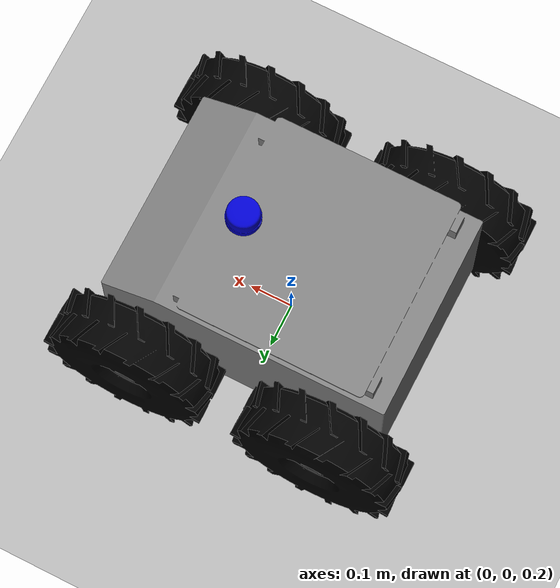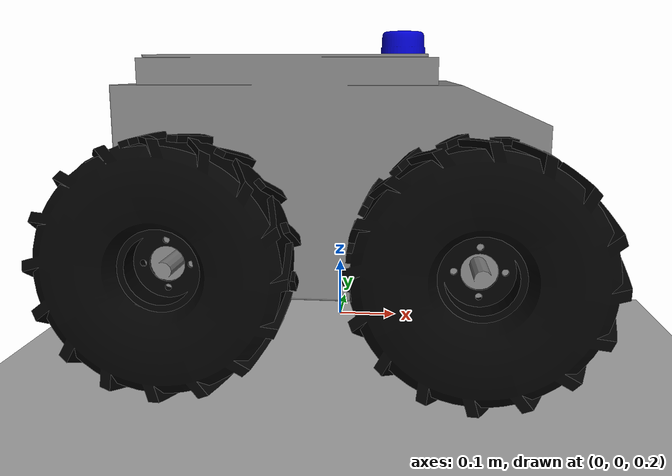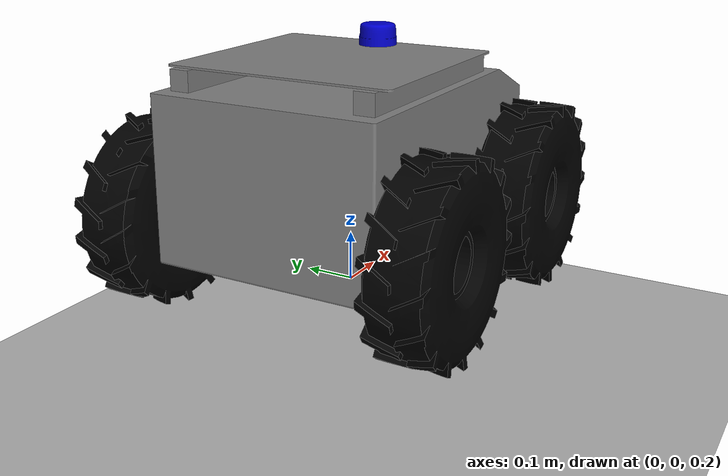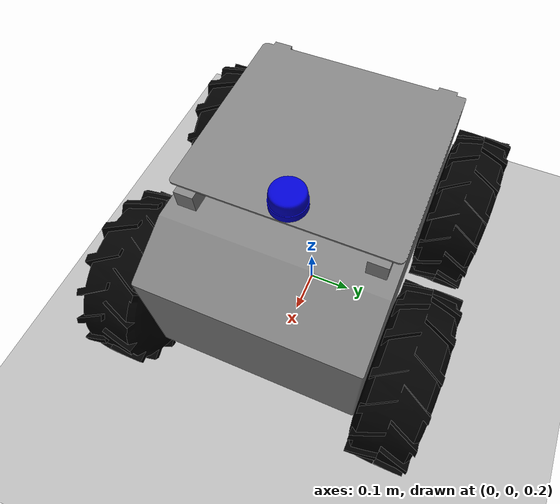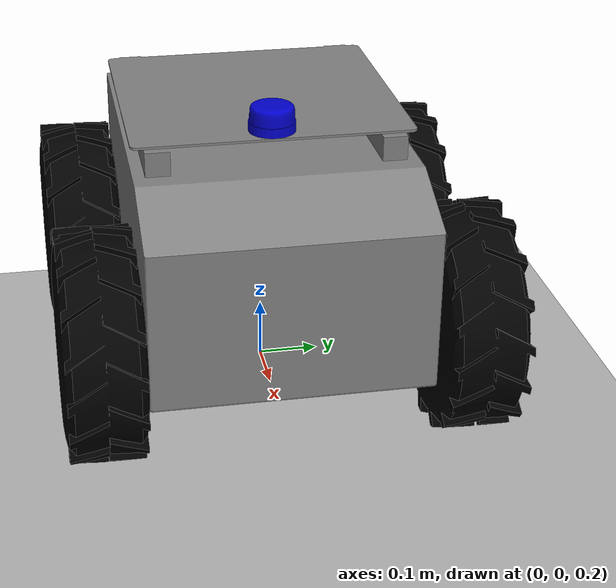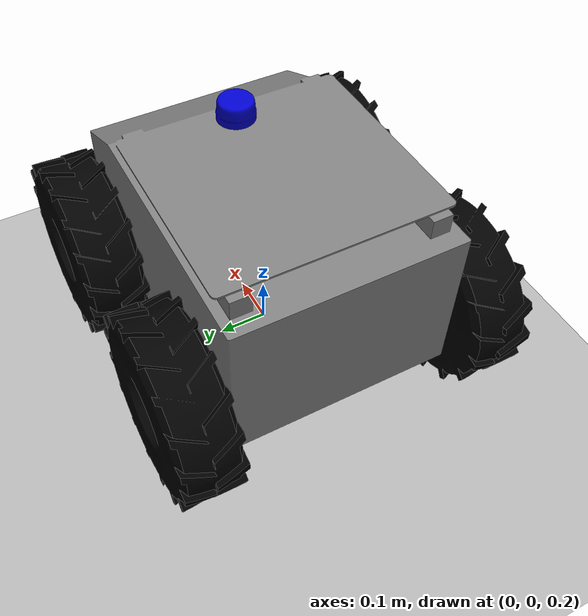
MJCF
<mujoco model="copernicus">
    <compiler angle="radian" meshdir="meshes/" />
    <option tolerance="1e-06" collision="predefined" cone="elliptic" jacobian="sparse" solver="CG" iterations="30" />
    <size njmax="500" nconmax="100" />
    <asset>
        <mesh name="copernicus" file="copernicus.stl" scale="0.1 0.1 0.1" />
        <mesh name="wheel" file="wheel.stl" scale="0.1 0.1 0.1" />
        <mesh name="rplidar" file="rplidar.stl" />
    </asset>
    <asset>
        <texture type="skybox" builtin="gradient" width="128" height="128" rgb1=".4 .6 .8" rgb2="0 0 0"/>
        <texture name="texgeom" type="cube" builtin="flat" mark="cross" width="128" height="128"
            rgb1="0.6 0.6 0.6" rgb2="0.6 0.6 0.6" markrgb="1 1 1"/>
        <texture name="texplane" type="2d" builtin="checker" rgb1=".4 .4 .4" rgb2=".6 .6 .6"
            width="512" height="512"/>
        <material name='MatPlane' reflectance='0.3' texture="texplane" texrepeat="1 1" texuniform="true"/>
    </asset>

     <visual>
        <quality shadowsize="2048" offsamples="16"/>
        <map znear="0.1" force="0.05"/>
    </visual>

    <statistic extent="4"/>

    <worldbody>
	<light directional="true" diffuse=".8 .8 .8" pos="0 0 10" dir="0 0 -10"/>
        <geom name="ground" pos="0 0 0" type="plane" size="10 10 .05" rgba=".7 .7 .7 1" material="MatPlane"/>

	<body name="base_link" pos="0 0 0.15">
            <freejoint name="root" />
	    <inertial pos="0 0 0" quat="1 0 0 0" mass="5.674" fullinertia="3.28 3.69 2.26 0.0 0.0 0.0" />
	    <camera name="camera" mode="fixed" fovy="45" ipd="0.068" pos="0.3 0 0.3" euler="0 -1.57 -1.57"/>
            <geom name="copernicus_body" pos="0 0 0.15" type="mesh" rgba="0.5 0.5 0.5 1" mesh="copernicus" />
            <geom name="rplidar_body" pos="0.109 0 0.515" rgba="0 0 0.8 1" type="mesh" mesh="rplidar" />
            <body name="front_right_wheel" pos="0.2203 -0.2949 0.223">
                <inertial pos="0 0 0" quat="0.878258 0.144321 -0.216139 0.401396" mass="2.637" diaginertia="0.646667 0.646667 0.646667" />
                <joint name="front_right_wheel_joint" pos="0 0 0" axis="0 1 0" />
                <geom name="frw_body" type="mesh" rgba="0 0 0 1" mesh="wheel" />
            </body>
            <body name="back_right_wheel" pos="-0.2203 -0.2949 0.223">
                <inertial pos="0 0 0" quat="0.878258 0.144321 -0.216139 0.401396" mass="2.637" diaginertia="0.646667 0.646667 0.646667" />
                <joint name="back_right_wheel_joint" pos="0 0 0" axis="0 1 0" />
                <geom name="flw_body"  type="mesh" rgba="0 0 0 1" mesh="wheel" />
            </body>
            <body name="front_left_wheel" pos="0.2203 0.2949 0.223">
                <inertial pos="0 0 0" quat="0.878258 0.144321 -0.216139 0.401396" mass="2.637" diaginertia="0.646667 0.646667 0.646667" />
                <joint name="front_left_wheel_joint" pos="0 0 0" axis="0 1 0" />
                <geom name="brw_body"  type="mesh" rgba="0 0 0 1" mesh="wheel" />
            </body>
            <body name="back_left_wheel" pos="-0.2203 0.2949 0.223">
                <inertial pos="0 0 0" quat="0.878258 0.144321 -0.216139 0.401396" mass="2.637" diaginertia="0.646667 0.646667 0.646667" />
                <joint name="back_left_wheel_joint" pos="0 0 0" axis="0 1 0" />
                <geom name="blw_body"  type="mesh" rgba="0 0 0 1" mesh="wheel" />
            </body>
	</body>
    </worldbody>
    <contact>
    	<pair geom1 ="ground" geom2 ="copernicus_body" friction ="1 1 0.005 0.0001 0.0001" condim ="3" margin =" 0.0" />
        <pair geom1 ="ground" geom2 ="rplidar_body" friction ="1 1 0.005 0.0001 0.0001" condim ="3" margin =" 0.0" />
        <pair geom1 ="ground" geom2 ="frw_body" friction ="1 1 0.005 0.0001 0.0001" condim ="3" margin =" 0.0" />
        <pair geom1 ="ground" geom2 ="flw_body" friction ="1 1 0.005 0.0001 0.0001" condim ="3" margin =" 0.0" />
        <pair geom1 ="ground" geom2 ="brw_body" friction ="1 1 0.005 0.0001 0.0001" condim ="3" margin =" 0.0" />
        <pair geom1 ="ground" geom2 ="blw_body" friction ="1 1 0.005 0.0001 0.0001" condim ="3" margin =" 0.0" />
    </contact>
</mujoco>
